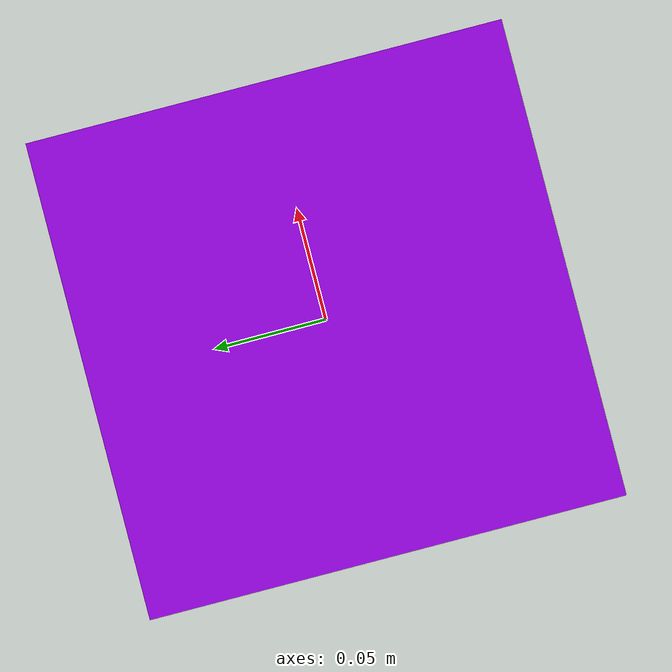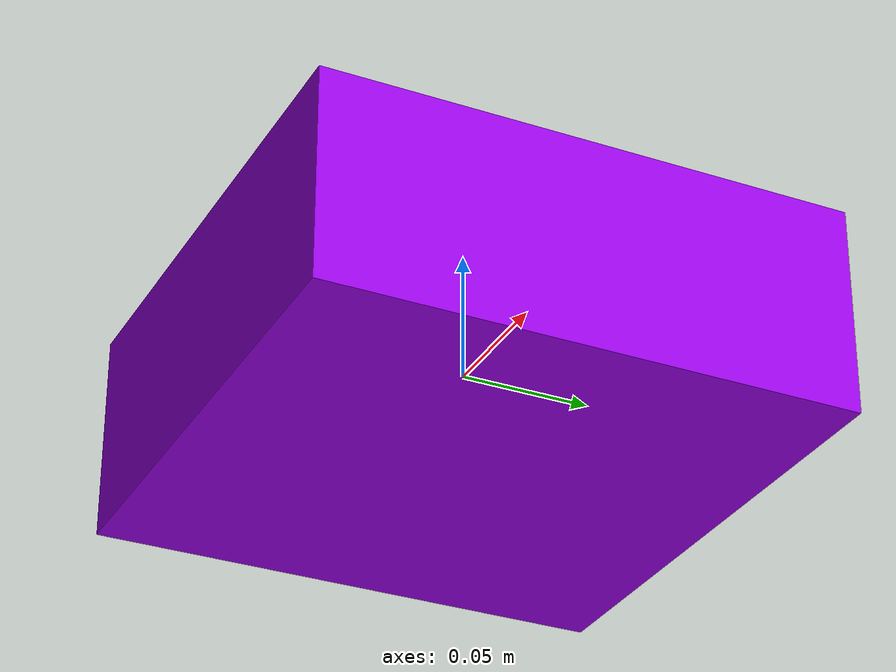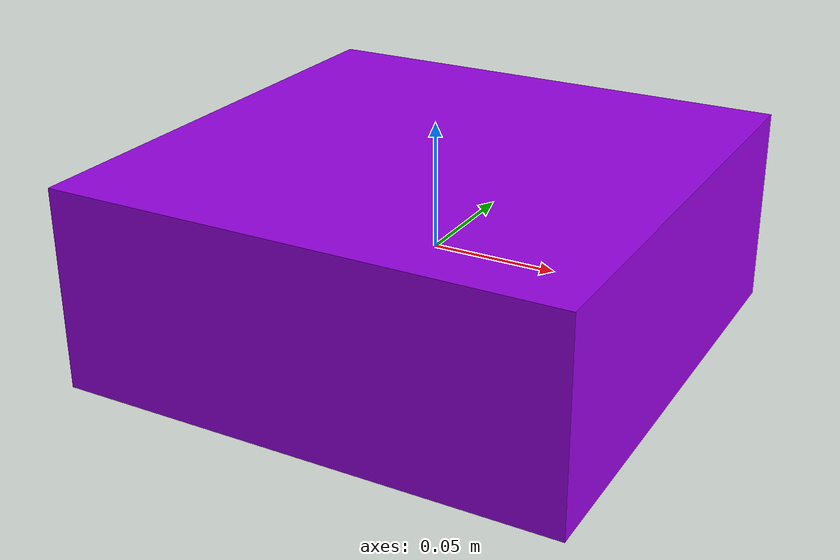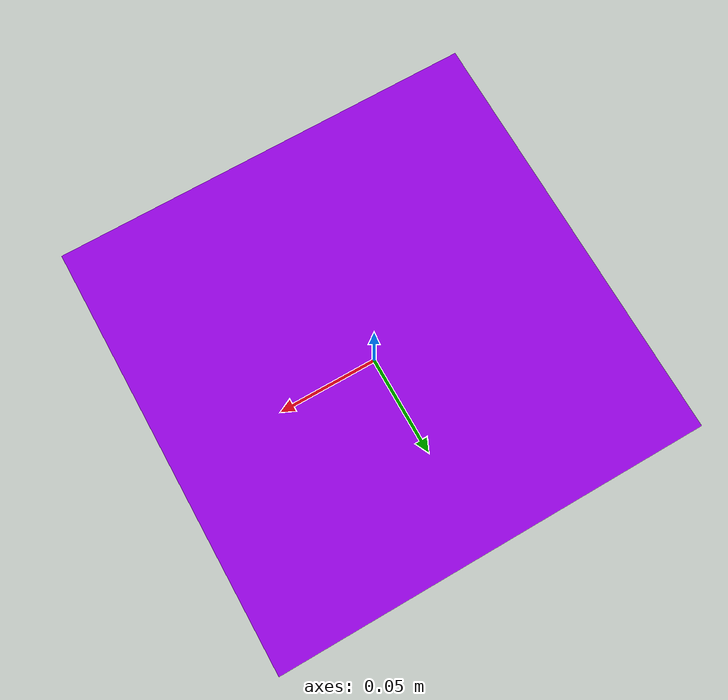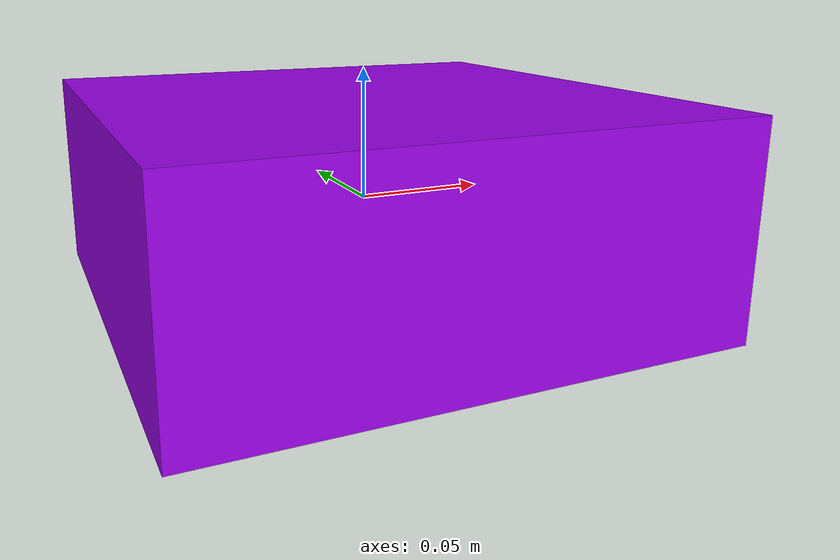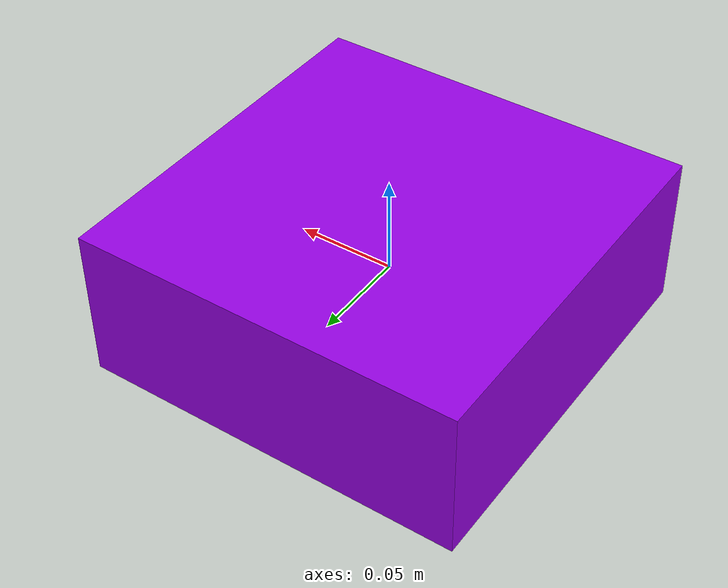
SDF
<?xml version='1.0'?>
<sdf version='1.6'>
  <model name="box_sim.sdf">

    <link name='branch'>

      <pose frame=''>0 0 0 0 0 0</pose>
      <collision name='collision'>
        <pose frame=''>0 0 0 0 0 0</pose>
        <geometry>
          <box>
            <size>0.2 0.2 0.08</size>
          </box>
        </geometry>
        <surface>
          <friction>
            <ode>
              <mu>1.5</mu>
              <mu2>1.5</mu2> <!-- Friction between box and ground-->
            </ode>
          </friction>
        </surface>
      </collision>

      <visual name='visual'>
        <pose frame=''>0 0 0 0 0 0</pose>
        <geometry>
          <box>
            <size>0.2 0.2 0.08</size>
          </box>
        </geometry>
        <material>
          <diffuse> 0.6 0.01 0.9 </diffuse>
        </material>
      </visual>

      <inertial>
        <pose frame=''>0 0 0 0 0 0</pose>
        <mass>2</mass>
      </inertial>
    </link>

  </model>
</sdf>
